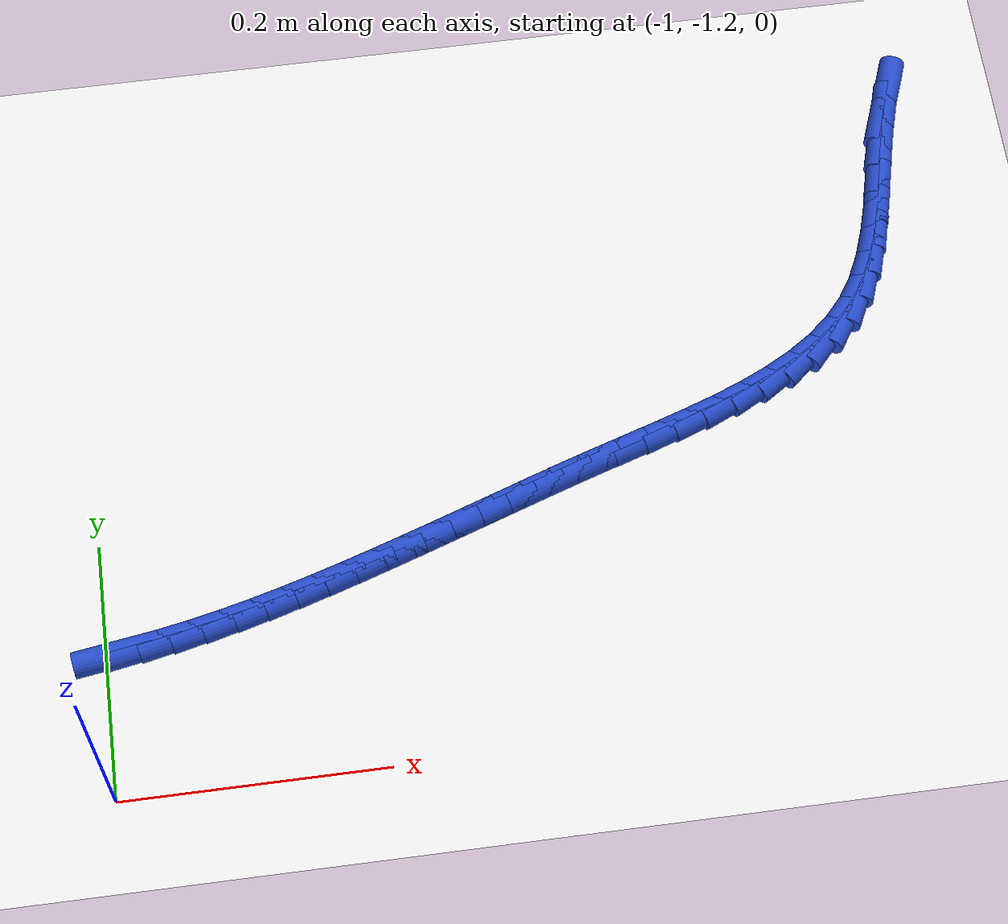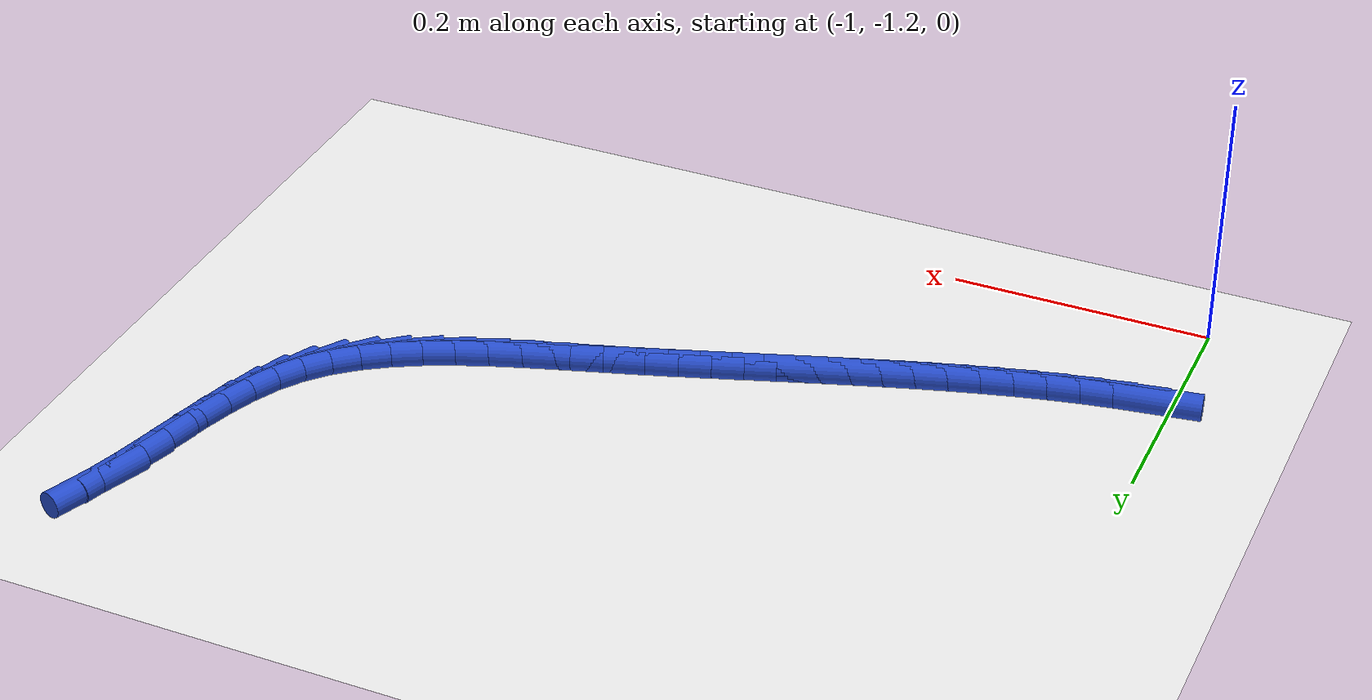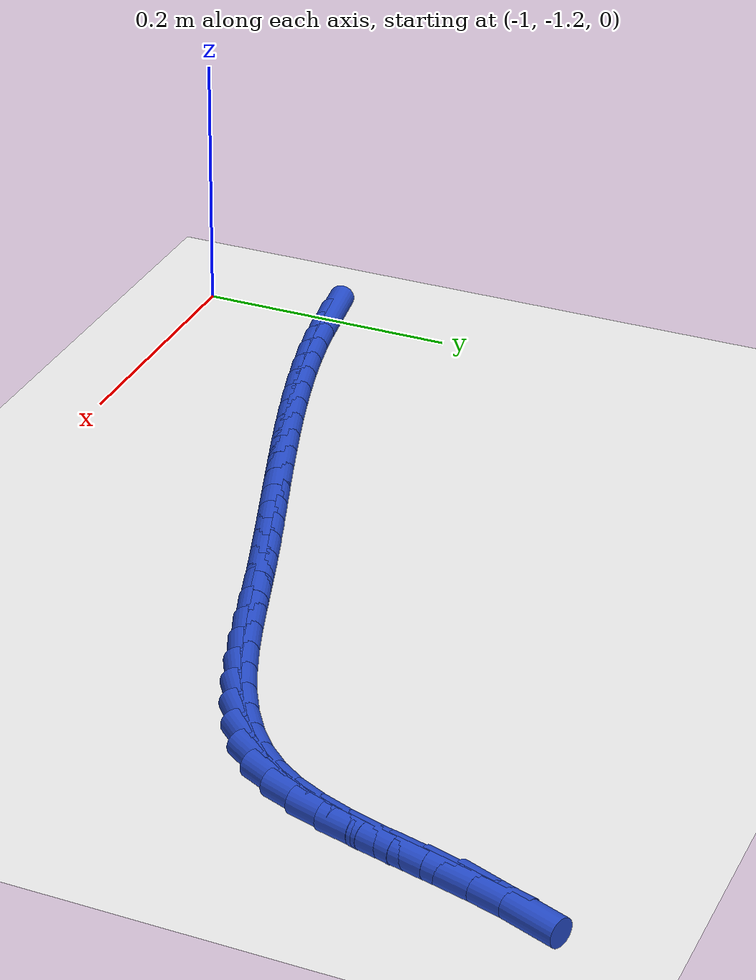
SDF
<sdf version="1.6">
 <world name="default">
  <model name="ground_plane">
   <static>1</static>
   <link name="link">
    <collision name="collision">
     <geometry><plane><normal>0 0 1</normal><size>100 100</size></plane></geometry>
     <surface><friction><ode><mu>100</mu><mu2>50</mu2></ode></friction></surface>
    </collision>
    <visual name="visual">
     <cast_shadows>0</cast_shadows>
     <geometry><plane><normal>0 0 1</normal><size>100 100</size></plane></geometry>
     <material>
      <script><uri>file://media/materials/scripts/gazebo.material</uri><name>Gazebo/WhiteGlow</name></script>
     </material>
    </visual>
   </link>
  </model>
  <model name="line">
   <link name="link_212">
    <pose>-0.9839859606619236 -1.090007933051997 0.01 0 1.57 0.1510417871119754</pose>
    <collision name="collision">
     <geometry><cylinder><radius>0.01</radius><length>0.08</length></cylinder></geometry>
    </collision>
    <visual name="visual">
     <material>
      <script><name>Gazebo/Blue</name><uri>file://media/materials/scripts/gazebo.material</uri></script>
     </material>
     <geometry><cylinder><radius>0.01</radius><length>0.08</length></cylinder></geometry>
    </visual>
   </link>
   <link name="link_213">
    <pose>-0.9602389674622114 -1.0863936176593407 0.01 0 1.57 0.1855912012914859</pose>
    <collision name="collision">
     <geometry><cylinder><radius>0.01</radius><length>0.08</length></cylinder></geometry>
    </collision>
    <visual name="visual">
     <material>
      <script><name>Gazebo/Blue</name><uri>file://media/materials/scripts/gazebo.material</uri></script>
     </material>
     <geometry><cylinder><radius>0.01</radius><length>0.08</length></cylinder></geometry>
    </visual>
   </link>
   <link name="link_214">
    <pose>-0.9365485677030181 -1.0819457021162064 0.01 0 1.57 0.21611138336010982</pose>
    <collision name="collision">
     <geometry><cylinder><radius>0.01</radius><length>0.08</length></cylinder></geometry>
    </collision>
    <visual name="visual">
     <material>
      <script><name>Gazebo/Blue</name><uri>file://media/materials/scripts/gazebo.material</uri></script>
     </material>
     <geometry><cylinder><radius>0.01</radius><length>0.08</length></cylinder></geometry>
    </visual>
   </link>
   <link name="link_215">
    <pose>-0.9129442146981954 -1.0767636053141545 0.01 0 1.57 0.24275945037926946</pose>
    <collision name="collision">
     <geometry><cylinder><radius>0.01</radius><length>0.08</length></cylinder></geometry>
    </collision>
    <visual name="visual">
     <material>
      <script><name>Gazebo/Blue</name><uri>file://media/materials/scripts/gazebo.material</uri></script>
     </material>
     <geometry><cylinder><radius>0.01</radius><length>0.08</length></cylinder></geometry>
    </visual>
   </link>
   <link name="link_216">
    <pose>-0.8894553617615947 -1.0709467461447437 0.01 0 1.57 0.26568117533686875</pose>
    <collision name="collision">
     <geometry><cylinder><radius>0.01</radius><length>0.08</length></cylinder></geometry>
    </collision>
    <visual name="visual">
     <material>
      <script><name>Gazebo/Blue</name><uri>file://media/materials/scripts/gazebo.material</uri></script>
     </material>
     <geometry><cylinder><radius>0.01</radius><length>0.08</length></cylinder></geometry>
    </visual>
   </link>
   <link name="link_217">
    <pose>-0.8661114622070664 -1.0645945434995334 0.01 0 1.57 0.28500123576321557</pose>
    <collision name="collision">
     <geometry><cylinder><radius>0.01</radius><length>0.08</length></cylinder></geometry>
    </collision>
    <visual name="visual">
     <material>
      <script><name>Gazebo/Blue</name><uri>file://media/materials/scripts/gazebo.material</uri></script>
     </material>
     <geometry><cylinder><radius>0.01</radius><length>0.08</length></cylinder></geometry>
    </visual>
   </link>
   <link name="link_218">
    <pose>-0.8429419693484634 -1.0578064162700833 0.01 0 1.57 0.3008156756995735</pose>
    <collision name="collision">
     <geometry><cylinder><radius>0.01</radius><length>0.08</length></cylinder></geometry>
    </collision>
    <visual name="visual">
     <material>
      <script><name>Gazebo/Blue</name><uri>file://media/materials/scripts/gazebo.material</uri></script>
     </material>
     <geometry><cylinder><radius>0.01</radius><length>0.08</length></cylinder></geometry>
    </visual>
   </link>
   <link name="link_219">
    <pose>-0.8199763364996366 -1.0506817833479525 0.01 0 1.57 0.31318576017794764</pose>
    <collision name="collision">
     <geometry><cylinder><radius>0.01</radius><length>0.08</length></cylinder></geometry>
    </collision>
    <visual name="visual">
     <material>
      <script><name>Gazebo/Blue</name><uri>file://media/materials/scripts/gazebo.material</uri></script>
     </material>
     <geometry><cylinder><radius>0.01</radius><length>0.08</length></cylinder></geometry>
    </visual>
   </link>
   <link name="link_220">
    <pose>-0.7972440169744373 -1.0433200636247006 0.01 0 1.57 0.3221709632303365</pose>
    <collision name="collision">
     <geometry><cylinder><radius>0.01</radius><length>0.08</length></cylinder></geometry>
    </collision>
    <visual name="visual">
     <material>
      <script><name>Gazebo/Blue</name><uri>file://media/materials/scripts/gazebo.material</uri></script>
     </material>
     <geometry><cylinder><radius>0.01</radius><length>0.08</length></cylinder></geometry>
    </visual>
   </link>
   <link name="link_221">
    <pose>-0.7747711891325274 -1.0358186220106627 0.01 0 1.57 0.32850323702606454</pose>
    <collision name="collision">
     <geometry><cylinder><radius>0.01</radius><length>0.08</length></cylinder></geometry>
    </collision>
    <visual name="visual">
     <material>
      <script><name>Gazebo/Blue</name><uri>file://media/materials/scripts/gazebo.material</uri></script>
     </material>
     <geometry><cylinder><radius>0.01</radius><length>0.08</length></cylinder></geometry>
    </visual>
   </link>
   <link name="link_222">
    <pose>-0.752518481469842 -1.028233711943607 0.01 0 1.57 0.332794142487288</pose>
    <collision name="collision">
     <geometry><cylinder><radius>0.01</radius><length>0.08</length></cylinder></geometry>
    </collision>
    <visual name="visual">
     <material>
      <script><name>Gazebo/Blue</name><uri>file://media/materials/scripts/gazebo.material</uri></script>
     </material>
     <geometry><cylinder><radius>0.01</radius><length>0.08</length></cylinder></geometry>
    </visual>
   </link>
   <link name="link_223">
    <pose>-0.7303859825938458 -1.0205836175380625 0.01 0 1.57 0.3349961333979805</pose>
    <collision name="collision">
     <geometry><cylinder><radius>0.01</radius><length>0.08</length></cylinder></geometry>
    </collision>
    <visual name="visual">
     <material>
      <script><name>Gazebo/Blue</name><uri>file://media/materials/scripts/gazebo.material</uri></script>
     </material>
     <geometry><cylinder><radius>0.01</radius><length>0.08</length></cylinder></geometry>
    </visual>
   </link>
   <link name="link_224">
    <pose>-0.7082715101389425 -1.0128851986028253 0.01 0 1.57 0.3350832633858533</pose>
    <collision name="collision">
     <geometry><cylinder><radius>0.01</radius><length>0.08</length></cylinder></geometry>
    </collision>
    <visual name="visual">
     <material>
      <script><name>Gazebo/Blue</name><uri>file://media/materials/scripts/gazebo.material</uri></script>
     </material>
     <geometry><cylinder><radius>0.01</radius><length>0.08</length></cylinder></geometry>
    </visual>
   </link>
   <link name="link_225">
    <pose>-0.6860728817395354 -1.0051553149466916 0.01 0 1.57 0.33307858677839647</pose>
    <collision name="collision">
     <geometry><cylinder><radius>0.01</radius><length>0.08</length></cylinder></geometry>
    </collision>
    <visual name="visual">
     <material>
      <script><name>Gazebo/Blue</name><uri>file://media/materials/scripts/gazebo.material</uri></script>
     </material>
     <geometry><cylinder><radius>0.01</radius><length>0.08</length></cylinder></geometry>
    </visual>
   </link>
   <link name="link_226">
    <pose>-0.6636879150300283 -0.9974108263784585 0.01 0 1.57 0.32905235103386926</pose>
    <collision name="collision">
     <geometry><cylinder><radius>0.01</radius><length>0.08</length></cylinder></geometry>
    </collision>
    <visual name="visual">
     <material>
      <script><name>Gazebo/Blue</name><uri>file://media/materials/scripts/gazebo.material</uri></script>
     </material>
     <geometry><cylinder><radius>0.01</radius><length>0.08</length></cylinder></geometry>
    </visual>
   </link>
   <link name="link_227">
    <pose>-0.6410144276448262 -0.9896685927069215 0.01 0 1.57 0.32311784897290213</pose>
    <collision name="collision">
     <geometry><cylinder><radius>0.01</radius><length>0.08</length></cylinder></geometry>
    </collision>
    <visual name="visual">
     <material>
      <script><name>Gazebo/Blue</name><uri>file://media/materials/scripts/gazebo.material</uri></script>
     </material>
     <geometry><cylinder><radius>0.01</radius><length>0.08</length></cylinder></geometry>
    </visual>
   </link>
   <link name="link_228">
    <pose>-0.6179502372183321 -0.9819454737408775 0.01 0 1.57 0.3154844504282948</pose>
    <collision name="collision">
     <geometry><cylinder><radius>0.01</radius><length>0.08</length></cylinder></geometry>
    </collision>
    <visual name="visual">
     <material>
      <script><name>Gazebo/Blue</name><uri>file://media/materials/scripts/gazebo.material</uri></script>
     </material>
     <geometry><cylinder><radius>0.01</radius><length>0.08</length></cylinder></geometry>
    </visual>
   </link>
   <link name="link_229">
    <pose>-0.5943948992038184 -0.9742573549256516 0.01 0 1.57 0.3114684297271442</pose>
    <collision name="collision">
     <geometry><cylinder><radius>0.01</radius><length>0.08</length></cylinder></geometry>
    </collision>
    <visual name="visual">
     <material>
      <script><name>Gazebo/Blue</name><uri>file://media/materials/scripts/gazebo.material</uri></script>
     </material>
     <geometry><cylinder><radius>0.01</radius><length>0.08</length></cylinder></geometry>
    </visual>
   </link>
   <link name="link_230">
    <pose>-0.5704029690352984 -0.9665332160330288 0.01 0 1.57 0.31997482372197905</pose>
    <collision name="collision">
     <geometry><cylinder><radius>0.01</radius><length>0.08</length></cylinder></geometry>
    </collision>
    <visual name="visual">
     <material>
      <script><name>Gazebo/Blue</name><uri>file://media/materials/scripts/gazebo.material</uri></script>
     </material>
     <geometry><cylinder><radius>0.01</radius><length>0.08</length></cylinder></geometry>
    </visual>
   </link>
   <link name="link_231">
    <pose>-0.5463041167765643 -0.9585477850594876 0.01 0 1.57 0.341936141958976</pose>
    <collision name="collision">
     <geometry><cylinder><radius>0.01</radius><length>0.08</length></cylinder></geometry>
    </collision>
    <visual name="visual">
     <material>
      <script><name>Gazebo/Blue</name><uri>file://media/materials/scripts/gazebo.material</uri></script>
     </material>
     <geometry><cylinder><radius>0.01</radius><length>0.08</length></cylinder></geometry>
    </visual>
   </link>
   <link name="link_232">
    <pose>-0.5224562813654189 -0.9500599401573686 0.01 0 1.57 0.37812362038606784</pose>
    <collision name="collision">
     <geometry><cylinder><radius>0.01</radius><length>0.08</length></cylinder></geometry>
    </collision>
    <visual name="visual">
     <material>
      <script><name>Gazebo/Blue</name><uri>file://media/materials/scripts/gazebo.material</uri></script>
     </material>
     <geometry><cylinder><radius>0.01</radius><length>0.08</length></cylinder></geometry>
    </visual>
   </link>
   <link name="link_233">
    <pose>-0.49921740173966567 -0.9408285594790136 0.01 0 1.57 0.4300607550723238</pose>
    <collision name="collision">
     <geometry><cylinder><radius>0.01</radius><length>0.08</length></cylinder></geometry>
    </collision>
    <visual name="visual">
     <material>
      <script><name>Gazebo/Blue</name><uri>file://media/materials/scripts/gazebo.material</uri></script>
     </material>
     <geometry><cylinder><radius>0.01</radius><length>0.08</length></cylinder></geometry>
    </visual>
   </link>
   <link name="link_234">
    <pose>-0.4769454168371065 -0.9306125211767622 0.01 0 1.57 0.49993885160368784</pose>
    <collision name="collision">
     <geometry><cylinder><radius>0.01</radius><length>0.08</length></cylinder></geometry>
    </collision>
    <visual name="visual">
     <material>
      <script><name>Gazebo/Blue</name><uri>file://media/materials/scripts/gazebo.material</uri></script>
     </material>
     <geometry><cylinder><radius>0.01</radius><length>0.08</length></cylinder></geometry>
    </visual>
   </link>
   <link name="link_235">
    <pose>-0.45599826559554574 -0.9191707034029566 0.01 0 1.57 0.5903635444794721</pose>
    <collision name="collision">
     <geometry><cylinder><radius>0.01</radius><length>0.08</length></cylinder></geometry>
    </collision>
    <visual name="visual">
     <material>
      <script><name>Gazebo/Blue</name><uri>file://media/materials/scripts/gazebo.material</uri></script>
     </material>
     <geometry><cylinder><radius>0.01</radius><length>0.08</length></cylinder></geometry>
    </visual>
   </link>
   <link name="link_236">
    <pose>-0.4367338869527858 -0.9062619843099371 0.01 0 1.57 0.7037056516715947</pose>
    <collision name="collision">
     <geometry><cylinder><radius>0.01</radius><length>0.08</length></cylinder></geometry>
    </collision>
    <visual name="visual">
     <material>
      <script><name>Gazebo/Blue</name><uri>file://media/materials/scripts/gazebo.material</uri></script>
     </material>
     <geometry><cylinder><radius>0.01</radius><length>0.08</length></cylinder></geometry>
    </visual>
   </link>
   <link name="link_237">
    <pose>-0.41951021984662956 -0.8916452420500446 0.01 0 1.57 0.8407992188099687</pose>
    <collision name="collision">
     <geometry><cylinder><radius>0.01</radius><length>0.08</length></cylinder></geometry>
    </collision>
    <visual name="visual">
     <material>
      <script><name>Gazebo/Blue</name><uri>file://media/materials/scripts/gazebo.material</uri></script>
     </material>
     <geometry><cylinder><radius>0.01</radius><length>0.08</length></cylinder></geometry>
    </visual>
   </link>
   <link name="link_238">
    <pose>-0.4046852032148797 -0.8750793547756195 0.01 0 1.57 0.992990030175514</pose>
    <collision name="collision">
     <geometry><cylinder><radius>0.01</radius><length>0.08</length></cylinder></geometry>
    </collision>
    <visual name="visual">
     <material>
      <script><name>Gazebo/Blue</name><uri>file://media/materials/scripts/gazebo.material</uri></script>
     </material>
     <geometry><cylinder><radius>0.01</radius><length>0.08</length></cylinder></geometry>
    </visual>
   </link>
   <link name="link_239">
    <pose>-0.39250689017018475 -0.8564020377013601 0.01 0 1.57 1.1229240013369761</pose>
    <collision name="collision">
     <geometry><cylinder><radius>0.01</radius><length>0.08</length></cylinder></geometry>
    </collision>
    <visual name="visual">
     <material>
      <script><name>Gazebo/Blue</name><uri>file://media/materials/scripts/gazebo.material</uri></script>
     </material>
     <geometry><cylinder><radius>0.01</radius><length>0.08</length></cylinder></geometry>
    </visual>
   </link>
   <link name="link_240">
    <pose>-0.3826417675542147 -0.8358682479956491 0.01 0 1.57 1.2189002186887143</pose>
    <collision name="collision">
     <geometry><cylinder><radius>0.01</radius><length>0.08</length></cylinder></geometry>
    </collision>
    <visual name="visual">
     <material>
      <script><name>Gazebo/Blue</name><uri>file://media/materials/scripts/gazebo.material</uri></script>
     </material>
     <geometry><cylinder><radius>0.01</radius><length>0.08</length></cylinder></geometry>
    </visual>
   </link>
   <link name="link_241">
    <pose>-0.3745646471320964 -0.8138704591984335 0.01 0 1.57 1.2835740549507049</pose>
    <collision name="collision">
     <geometry><cylinder><radius>0.01</radius><length>0.08</length></cylinder></geometry>
    </collision>
    <visual name="visual">
     <material>
      <script><name>Gazebo/Blue</name><uri>file://media/materials/scripts/gazebo.material</uri></script>
     </material>
     <geometry><cylinder><radius>0.01</radius><length>0.08</length></cylinder></geometry>
    </visual>
   </link>
   <link name="link_242">
    <pose>-0.3677502227656635 -0.7908012294388179 0.01 0 1.57 1.3202767284150387</pose>
    <collision name="collision">
     <geometry><cylinder><radius>0.01</radius><length>0.08</length></cylinder></geometry>
    </collision>
    <visual name="visual">
     <material>
      <script><name>Gazebo/Blue</name><uri>file://media/materials/scripts/gazebo.material</uri></script>
     </material>
     <geometry><cylinder><radius>0.01</radius><length>0.08</length></cylinder></geometry>
    </visual>
   </link>
   <link name="link_243">
    <pose>-0.3616731883167487 -0.7670531168459058 0.01 0 1.57 1.3314511276918906</pose>
    <collision name="collision">
     <geometry><cylinder><radius>0.01</radius><length>0.08</length></cylinder></geometry>
    </collision>
    <visual name="visual">
     <material>
      <script><name>Gazebo/Blue</name><uri>file://media/materials/scripts/gazebo.material</uri></script>
     </material>
     <geometry><cylinder><radius>0.01</radius><length>0.08</length></cylinder></geometry>
    </visual>
   </link>
   <link name="link_244">
    <pose>-0.3558082376471859 -0.7430186795488032 0.01 0 1.57 1.3181185260696298</pose>
    <collision name="collision">
     <geometry><cylinder><radius>0.01</radius><length>0.08</length></cylinder></geometry>
    </collision>
    <visual name="visual">
     <material>
      <script><name>Gazebo/Blue</name><uri>file://media/materials/scripts/gazebo.material</uri></script>
     </material>
     <geometry><cylinder><radius>0.01</radius><length>0.08</length></cylinder></geometry>
    </visual>
   </link>
   <link name="link_245">
    <pose>-0.34963006461880813 -0.719090475676614 0.01 0 1.57 1.2798142706452718</pose>
    <collision name="collision">
     <geometry><cylinder><radius>0.01</radius><length>0.08</length></cylinder></geometry>
    </collision>
    <visual name="visual">
     <material>
      <script><name>Gazebo/Blue</name><uri>file://media/materials/scripts/gazebo.material</uri></script>
     </material>
     <geometry><cylinder><radius>0.01</radius><length>0.08</length></cylinder></geometry>
    </visual>
   </link>
   <link name="link_246">
    <pose>-0.34261336309344853 -0.6956610633584424 0.01 0 1.57 1.2147996061529975</pose>
    <collision name="collision">
     <geometry><cylinder><radius>0.01</radius><length>0.08</length></cylinder></geometry>
    </collision>
    <visual name="visual">
     <material>
      <script><name>Gazebo/Blue</name><uri>file://media/materials/scripts/gazebo.material</uri></script>
     </material>
     <geometry><cylinder><radius>0.01</radius><length>0.08</length></cylinder></geometry>
    </visual>
   </link>
  </model>
 </world>
</sdf>
